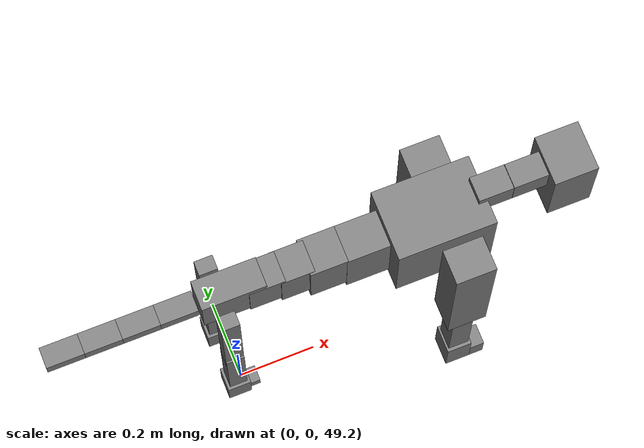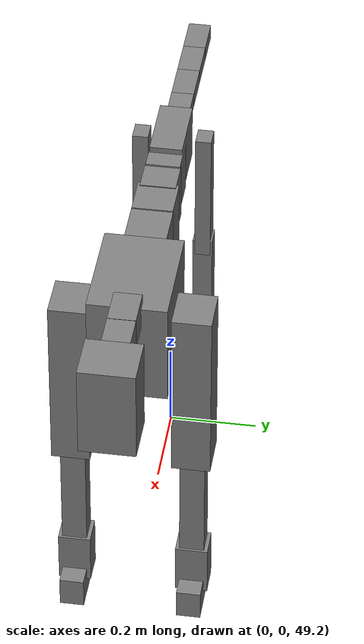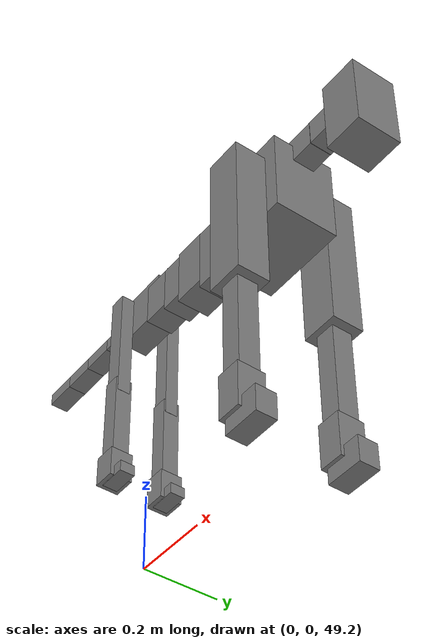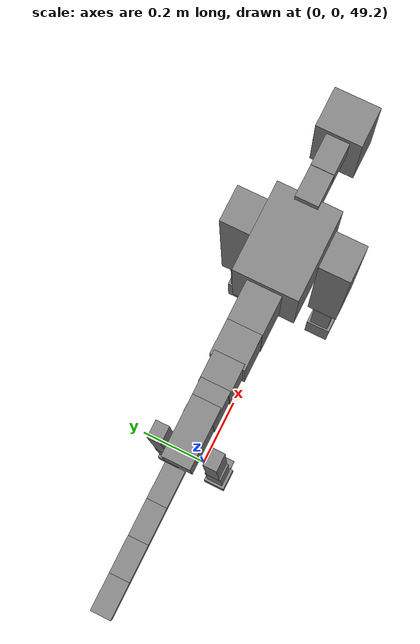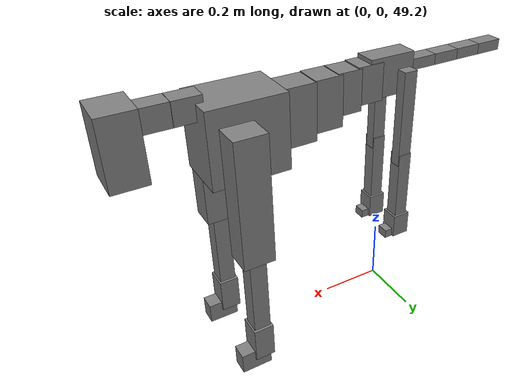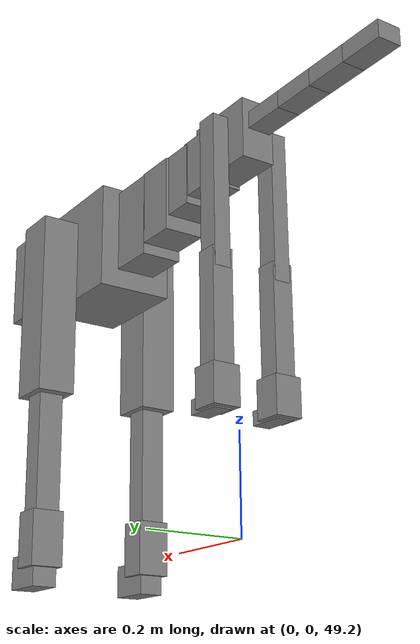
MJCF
<mujoco model="dog">

    <default>
        <joint armature="0.02" stiffness="1" damping="0.2" limited="true"/>
        <geom condim="3" friction="1 0.05 0.05" margin="0.01"/>
        <motor ctrllimited="true" ctrlrange="-1.0 1.0" forcelimited="true" gear="50"/>
    </default>

    <compiler inertiafromgeom="true" angle="radian"/>

    <option timestep="0.016" iterations="50" tolerance="1e-10" solver="Newton" jacobian="dense" cone="pyramidal"/>

    <size nconmax="20000" njmax="60000" nstack="5000000"/>
    <visual>
        <map force="0.1" zfar="30"/>
        <rgba haze="0.15 0.25 0.35 1"/>
        <quality shadowsize="2048"/>
        <global offwidth="800" offheight="800"/>
    </visual>

    <asset>
        <texture type="skybox" builtin="gradient" rgb1="0.3 0.5 0.7" rgb2="0 0 0" width="512" height="512"/>
        <texture name="texplane" type="2d" builtin="checker" rgb1=".2 .3 .4" rgb2=".1 0.15 0.2" width="512" height="512"
                 mark="cross" markrgb=".8 .8 .8"/>
        <texture name="texgeom" type="cube" builtin="flat" mark="cross" width="127" height="1278" rgb1="0.8 0.6 0.4"
                 rgb2="0.8 0.6 0.4" markrgb="1 1 1" random="0.01"/>

        <material name="matplane" reflectance="0.3" texture="texplane" texrepeat="1 1" texuniform="true"/>
        <material name="matgeom" texture="texgeom" texuniform="true" rgba="0.8 0.6 .4 1"/>
    </asset>

    <worldbody>
        <geom name="floor" pos="0 0 0" size="0 0 .25" type="plane" material="matplane" condim="3"/>

        <light directional="false" diffuse=".2 .2 .2" specular="0 0 0" pos="0 0 5" dir="0 0 -1" castshadow="false"/>
        <light mode="targetbodycom" target="torso" directional="false" diffuse=".8 .8 .8" specular="0.3 0.3 0.3"
               pos="0 0 4.0" dir="0 0 -1"/>

        <body name="root" pos="0 0 50">
            <freejoint name="root_1"/>
            <geom type="box" pos="0 0 -0.02" size="0.0774  0.0358  0.063" density="2030"/>

            <body name="spine1" pos="0.054 0 0">
                <joint name="spine1_y" axis="0 1 0" range="0 0.7" limited="true"/>
                <geom type="box" pos="0.02375 0 -0.03" size="0.04375  0.0375  0.05985" density="2030"/>

                <body name="spine2" pos="0.0612 0 0">
                    <joint name="spine2_y" axis="0 1 0" range="-0.15 0.15" limited="true"/>
                    <geom type="box" pos="0.03555  0  -0.04" size="0.04055  0.039  0.06615" density="2030"/>

                    <body name="spine3" pos="0.0730 0 0">
                        <joint name="spine3_y" axis="0 1 0" range="-0.15 0.15" limited="true"/>
                        <geom type="box" pos="0.03555  0  -0.057" size="0.04555  0.0445  0.081" density="2030"/>

                        <body name="spine4" pos="0.0780 0 0">
                            <joint name="spine4_y" axis="0 1 0" range="-0.15 0.15" limited="true"/>
                            <geom type="box" pos="0.05265  0  -0.07" size="0.05265  0.045  0.09135" density="2030"/>

                            <body name="torso" pos="0.1082 0 0">
                                <joint name="torso_y" axis="0 1 0" range="-0.15 0.15" limited="true"/>
                                <geom type="box" pos="0.11925  0  -0.085" size="0.11925  0.085  0.11745"
                                      density="2030"/>

                                <body name="neck1" pos="0.2160  0   0.0180">
                                    <joint name="neck1_y" axis="0 1 0" range="-1.2  -1" limited="true"/>
                                    <geom type="box" pos="0.0423  0  0" size="0.0423  0.03  0.036" density="2325"/>

                                    <body name="neck2" pos="0.0853  0  0">
                                        <joint name="neck2_y" axis="0 1 0" range="0.1  0" limited="true"/>
                                        <geom type="box" pos="0.0423  0  0" size="0.0423  0.03  0.036" density="2325"/>

                                        <body name="head" pos="0.0853  0  0">
                                            <joint name="head_y" axis="0 1 0" range="-0.3  -0.2" limited="true"/>
                                            <geom type="box" pos="0.0531  0  -0.055" size="0.0531  0.06  0.1044"
                                                  density="4030"/>

                                        </body>
                                    </body>
                                </body>

                                <body name="front_shoulder" pos="0.156  0   -0.0480">
                                    <joint name="front_shoulder_y" axis="0 1 0" range="-1 1.5" limited="true"/>
                                    <geom type="box" pos="0 0.13 -0.1759" size="0.0492  0.0420  0.2026" density="1158"/>
                                    <geom type="box" pos="0 -0.13 -0.1759" size="0.0492  0.0420  0.2026"
                                          density="1158"/>

                                    <body name="front_elbow" pos="0  0  -0.3518">
                                        <joint name="front_elbow_y" axis="0 1 0" range="-2 0" limited="true"/>
                                        <geom type="box" pos="0 0.13 -0.1474" size="0.0265  0.0271  0.1474"
                                              density="1081"/>
                                        <geom type="box" pos="0 -0.13 -0.1474" size="0.0265  0.0271  0.1474"
                                              density="1081"/>

                                        <body name="front_wrist" pos="0  0  -0.2948">
                                            <joint name="front_wrist_y" axis="0 1 0" range="-0.2 0" limited="true"/>
                                            <geom type="box" pos="0 0.13 -0.0456" size="0.0318  0.0354  0.0588"
                                                  density="1664"/>
                                            <geom type="box" pos="0 -0.13 -0.0456" size="0.0318  0.0354  0.0588"
                                                  density="1664"/>

                                            <body name="front_finger_end" pos="0  0  -0.0913">
                                                <joint name="front_finger_y" axis="0 1 0" range="-0.4 1"
                                                       limited="true"/>
                                                <geom type="box" pos="0.0266  0.13  -0.0193"
                                                      size="0.0488  0.0266  0.0343" density="1515"/>
                                                <geom type="box" pos="0.0266  -0.13  -0.0193"
                                                      size="0.0488  0.0266  0.0343" density="1515"/>

                                            </body>

                                        </body>
                                    </body>
                                </body>

                            </body>
                        </body>
                    </body>
                </body>
            </body>

            <body name="back_hip" pos="-0.03 0 -0.018">
                <joint name="back_hip_y" axis="0 1 0" range="-1.5 0.3" limited="true"/>
                <geom type="box" pos="0 0.07 -0.1345" size="0.0224  0.0175  0.1573" density="1154"/>
                <geom type="box" pos="0 -0.07 -0.1345" size="0.0224  0.0175  0.1573" density="1154"/>

                <body name="back_knee" pos="0  0  -0.2689">
                    <joint name="back_knee_y" axis="0 1 0" range="0 2.8" limited="true"/>
                    <geom type="box" pos="0 0.07 -0.1115" size="0.0222  0.0218  0.1270" density="1227"/>
                    <geom type="box" pos="0 -0.07 -0.1115" size="0.0222  0.0218  0.1270" density="1227"/>

                    <body name="back_ankle" pos="0  0  -0.2229">
                        <joint name="back_ankle_y" axis="0 1 0" range="-2.2 0" limited="true"/>
                        <geom type="box" pos="0 0.07 -0.0281" size="0.0290  0.0290  0.0394" density="1284"/>
                        <geom type="box" pos="0 -0.07 -0.0281" size="0.0290  0.0290  0.0394" density="1284"/>

                        <body name="back_toe_end" pos="0  0  -0.0563">
                            <joint name="back_toe_y" axis="0 1 0" range="-0.4 1" limited="true"/>
                            <geom type="box" pos="0.0195  0.07  0.0006" size="0.0358  0.0195  0.0144" density="1515"/>
                            <geom type="box" pos="0.0195  -0.07  0.0006" size="0.0358  0.0195  0.0144" density="1515"/>

                        </body>
                    </body>
                </body>
            </body>

            <body name="tail1" pos="-0.074 0 -0.006">
                <joint name="tail1_y" axis="0 1 0" range="-0.2 0.2" limited="true"/>
                <geom type="box" pos="-0.0536  0  0" size="0.045  0.025  0.0175" density="1587"/>

                <body name="tail2" pos="-0.09 0 0">
                    <joint name="tail2_y" axis="0 1 0" range="-0.2 0.2" limited="true"/>
                    <geom type="box" pos="-0.0536  0  0" size="0.045  0.025  0.0175" density="1587"/>

                    <body name="tail3" pos="-0.09 0 0">
                        <joint name="tail3_y" axis="0 1 0" range="-0.2 0.2" limited="true"/>
                        <geom type="box" pos="-0.0536  0  0" size="0.045  0.025  0.0175" density="1587"/>

                        <body name="tail4" pos="-0.09 0 0">
                            <joint name="tail4_y" axis="0 1 0" range="-0.2 0.2" limited="true"/>
                            <geom type="box" pos="-0.0536  0  0" size="0.045  0.025  0.0175" density="1587"/>

                        </body>
                    </body>
                </body>
            </body>
        </body>
    </worldbody>

    <actuator>
        <motor joint="spine1_y" forcerange="-150 150     "/>
        <motor joint="spine2_y" forcerange="-150 150     "/>
        <motor joint="spine3_y" forcerange="-150 150     "/>
        <motor joint="spine4_y" forcerange="-150 150     "/>
        <motor joint="torso_y" forcerange="-150 150     "/>
        <motor joint="neck1_y" forcerange="-100 100       "/>
        <motor joint="neck2_y" forcerange="-100 100       "/>
        <motor joint="head_y" forcerange="-150 150       "/>
        <motor joint="front_shoulder_y" forcerange="-190.27 189.95"/>
        <motor joint="front_elbow_y" forcerange="-151.80 145.47"/>
        <motor joint="front_wrist_y" forcerange="-143.96 138.96"/>
        <motor joint="front_finger_y" forcerange="-52.13 49.78"/>
        <motor joint="back_hip_y" forcerange="-221.93 211.92"/>
        <motor joint="back_knee_y" forcerange="-277.22 240.35"/>
        <motor joint="back_angle_y" forcerange="-204.06 159.24"/>
        <motor joint="back_toe_y" forcerange="-39.34 36.84"/>
        <motor joint="tail1_y" forcerange="-50 50     "/>
        <motor joint="tail2_y" forcerange="-50 50     "/>
        <motor joint="tail3_y" forcerange="-50 50     "/>
        <motor joint="tail4_y" forcerange="-50 50     "/>
    </actuator>
</mujoco>
